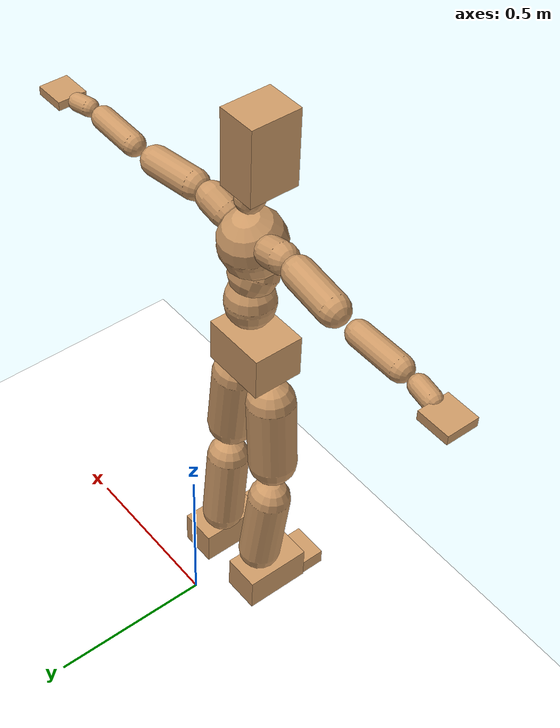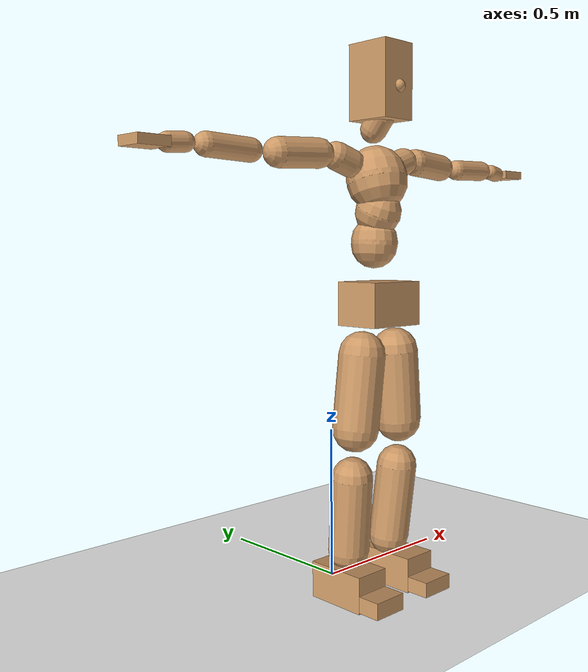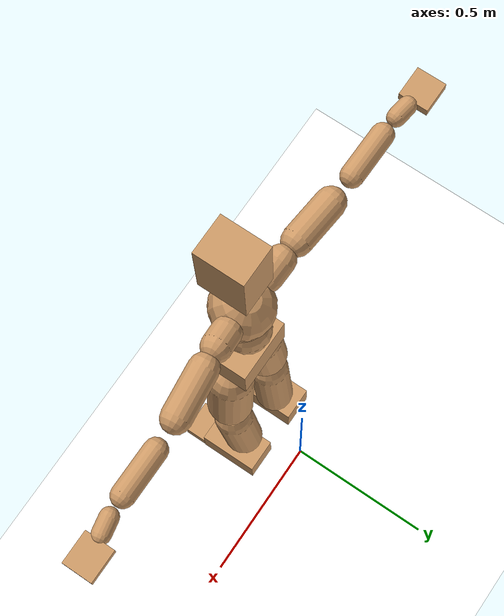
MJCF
<mujoco model="humanoid">
  <option integrator="implicitfast" />

  <visual>
    <global offwidth="1280" offheight="960" />
    <headlight active="1" ambient="0.34 0.34 0.34" diffuse="0.5 0.5 0.5" />
  </visual>

  <default>
    <joint damping="2" stiffness="2" armature="0.01" limited="true" solimplimit="0 .99 .01" />
    <geom condim="1" friction="0.7 0.005 0.0001" solimp=".99 .99 .003" solref="0.015 1" margin="0.001" rgba="0.8 0.6 .4 1" />
    <default class="smplcontact">
      <geom condim="3" friction="1. 0.005 0.0001" solref="0.015 1" solimp="0.98 0.98 0.001" priority="1" />
    </default>
    <default class="stiff_medium">
      <joint stiffness="10" />
    </default>
    <default class="stiff_medium_higher">
      <joint stiffness="50" />
    </default>
    <default class="stiff_high">
      <joint stiffness="100" />
    </default>
  </default>

  <asset>
    <texture type="skybox" builtin="gradient" rgb1="0.99 0.99 0.99" rgb2="0.608 0.828 0.892" width="100" />
    <texture builtin="flat" height="1278" mark="cross" markrgb="1 1 1" name="texgeom" random="0.01" rgb1="0.8 0.6 0.4" rgb2="0.8 0.6 0.4" type="cube" width="127" />
    <texture name="texplane" type="2d" builtin="checker" markrgb="1 1 1" rgb1="0.756 0.772 0.76" rgb2="0.6 0.6 0.6" width="100" height="100" />
    <material name="MatPlane" reflectance="0.5" texture="texplane" texrepeat="1 1" texuniform="true" />
    <material name="geom" texture="texgeom" texuniform="true" />
  </asset>

  <worldbody>
    <light name="tracking_light" pos="0 0 7" dir="0 0 -1" directional="true" cutoff="100" exponent="1" diffuse="1 1 1" specular="0.1 0.1 0.1" mode="trackcom" />
    <camera name="back" pos="0 3 2.4" xyaxes="-1 0 0 0 -1 2" mode="trackcom" />
    <camera name="side" pos="-3 0 2.4" xyaxes="0 -1 0 1 0 2" mode="trackcom" />
    <camera name="front_side" pos="-2.8 -2.8 0.8" xyaxes="0.5 -0.5 0 0.1 0.1 1" mode="trackcom" />
    <geom condim="3" name="floor" pos="0 0 0" rgba="1 1 1 1" size="100 100 .2" type="plane" material="MatPlane" />
    <body name="Pelvis" pos="-0.0018 -0.2233 0.94626" euler="90 0 0">
      <site name="Pelvis" size="0.01" />
      <freejoint name="Pelvis" />
      <geom type="box" pos="-0.0000 -0.0121 -0.0055" size="0.101555 0.06859 0.07885" quat="1.0000 0.0000 0.0000 0.0000" density="3165.830099" name="Pelvis" />
      <body name="L_Hip" pos="0.0695 -0.0914 -0.0068">
        <joint name="L_Hip_x" type="hinge" pos="0 0 0" axis="1 0 0" stiffness="15.348969899999998" range="-160.0 22.92" class="stiff_medium" damping="23.33683744368365" armature="0.01576965708581642"/>
        <joint name="L_Hip_y" type="hinge" pos="0 0 0" axis="0 1 0" stiffness="15.4205663" range="-70.0 70.0" class="stiff_medium" damping="17.398449188544404" armature="0.019630020602185116"/>
        <joint name="L_Hip_z" type="hinge" pos="0 0 0" axis="0 0 1" stiffness="15.407945599999998" range="-28.65 90.0" class="stiff_medium" damping="15.584850619811796" armature="0.015763786759595527"/>
        <geom type="capsule" density="2040.816327" fromto="0.0069 -0.075 -0.0009 0.0274 -0.3002 -0.0036" size="0.0738" name="L_Hip" />
        <body name="L_Knee" pos="0.0343 -0.3752 -0.0045">
          <joint name="L_Knee_x" type="hinge" pos="0 0 0" axis="1 0 0" range="-5.16 171.89" damping="12.800913507492277" armature="0.016354240077878446" stiffness="3.1311334599999996"/>
          <joint name="L_Knee_y" type="hinge" pos="0 0 0" axis="0 1 0" range="-4.58 6.88" damping="14.192153092969681" armature="0.020342005397322144" stiffness="3.0942317000000004"/>
          <joint name="L_Knee_z" type="hinge" pos="0 0 0" axis="0 0 1" range="-6.88 4.58" damping="12.838286463865066" armature="0.016324501605249363" stiffness="3.1551805400000004"/>
          <geom type="capsule" density="1234.567901" fromto="-0.0027 -0.0796 -0.0087 -0.0109 -0.3184 -0.035" size="0.06492" name="L_Knee" />
          <body name="L_Ankle" pos="-0.0136 -0.398 -0.0437">
            <joint name="L_Ankle_x" type="hinge" pos="0 0 0" axis="1 0 0" range="-45.84 45.84" class="stiff_medium" damping="11.121338151279762" armature="0.019882356332804583" stiffness="17.279999999999998"/>
            <joint name="L_Ankle_y" type="hinge" pos="0 0 0" axis="0 1 0" range="-74.48 22.92" class="stiff_medium" damping="5.5866245359367595" armature="0.02006839873040806" stiffness="17.279999999999998"/>
            <joint name="L_Ankle_z" type="hinge" pos="0 0 0" axis="0 0 1" range="-4.58 4.58" class="stiff_medium" damping="11.50730559456523" armature="0.021286342921603696" stiffness="17.279999999999998"/>
            <geom type="box" pos="0.0233 -0.0239 0.0242" size="0.05796 0.05568 0.102" quat="1.0000 0.0000 0.0000 0.0000" density="449.071558" name="L_Ankle" class="smplcontact" />
            <body name="L_Toe" pos="0.0264 -0.0558 0.1193">
              <joint name="L_Toe_x" type="hinge" pos="0 0 0" axis="1 0 0" range="-91.67 22.92" armature="0.021992555271829924" damping="3.8988785828605694" stiffness="3.4559999999999995"/>
              <joint name="L_Toe_y" type="hinge" pos="0 0 0" axis="0 1 0" range="-4.58 4.58" armature="0.02284650742559928" damping="3.9738527819452774" stiffness="3.4559999999999995"/>
              <joint name="L_Toe_z" type="hinge" pos="0 0 0" axis="0 0 1" range="-4.58 4.58" armature="0.024573152716749612" damping="4.12128173725327" stiffness="3.4559999999999995"/>
              <geom type="box" pos="-0.003 0.0055 0.0248" size="0.05736 0.024 0.05952" quat="1.0000 0.0000 0.0000 0.0000" density="423.206892" name="L_Toe" class="smplcontact" />
            </body>
          </body>
        </body>
      </body>
      <body name="R_Hip" pos="-0.0677 -0.0905 -0.0043">
        <joint name="R_Hip_x" type="hinge" pos="0 0 0" axis="1 0 0" stiffness="15.348969899999998" range="-160.0 22.92" class="stiff_medium" damping="23.33683744368365" armature="0.01576965708581642"/>
        <joint name="R_Hip_y" type="hinge" pos="0 0 0" axis="0 1 0" stiffness="15.4205663" range="-70.0 70.0" class="stiff_medium" damping="17.398449188544404" armature="0.019630020602185116"/>
        <joint name="R_Hip_z" type="hinge" pos="0 0 0" axis="0 0 1" stiffness="15.407945599999998" range="-90.0 28.65" class="stiff_medium" damping="15.584850619811796" armature="0.015763786759595527"/>
        <geom type="capsule" density="2040.816327" fromto="-0.0077 -0.0765 -0.0018 -0.0306 -0.3061 -0.0071" size="0.07272" name="R_Hip" />
        <body name="R_Knee" pos="-0.0383 -0.3826 -0.0089">
          <joint name="R_Knee_x" type="hinge" pos="0 0 0" axis="1 0 0" range="-5.16 171.89" damping="12.800913507492277" armature="0.016354240077878446" stiffness="3.1311334599999996"/>
          <joint name="R_Knee_y" type="hinge" pos="0 0 0" axis="0 1 0" range="-6.88 4.58" damping="14.192153092969681" armature="0.020342005397322144" stiffness="3.0942317000000004"/>
          <joint name="R_Knee_z" type="hinge" pos="0 0 0" axis="0 0 1" range="-4.58 6.88" damping="12.838286463865066" armature="0.016324501605249363" stiffness="3.1551805400000004"/>
          <geom type="capsule" density="1234.567901" fromto="0.0032 -0.0797 -0.0085 0.0126 -0.3187 -0.0338" size="0.06492" name="R_Knee" />
          <body name="R_Ankle" pos="0.0158 -0.3984 -0.0423">
            <joint name="R_Ankle_x" type="hinge" pos="0 0 0" axis="1 0 0" range="-45.84 45.84" class="stiff_medium" damping="11.121338151279762" armature="0.019882356332804583" stiffness="17.279999999999998"/>
            <joint name="R_Ankle_y" type="hinge" pos="0 0 0" axis="0 1 0" range="-22.92 74.48" class="stiff_medium" damping="5.5866245359367595" armature="0.02006839873040806" stiffness="17.279999999999998"/>
            <joint name="R_Ankle_z" type="hinge" pos="0 0 0" axis="0 0 1" range="-4.58 4.58" class="stiff_medium" damping="11.50730559456523" armature="0.021286342921603696" stiffness="17.279999999999998"/>
            <geom type="box" pos="-0.0212 -0.0174 0.0256" size="0.05796 0.05736 0.1038" quat="1.0000 0.0000 0.0000 0.0000" density="434.700981" name="R_Ankle" class="smplcontact" />
            <body name="R_Toe" pos="-0.0254 -0.0481 0.1233">
              <joint name="R_Toe_x" type="hinge" pos="0 0 0" axis="1 0 0" range="-91.67 22.92" armature="0.021992555271829924" damping="3.8988785828605694" stiffness="3.4559999999999995"/>
              <joint name="R_Toe_y" type="hinge" pos="0 0 0" axis="0 1 0" range="-4.58 4.58" armature="0.02284650742559928" damping="3.9738527819452774" stiffness="3.4559999999999995"/>
              <joint name="R_Toe_z" type="hinge" pos="0 0 0" axis="0 0 1" range="-4.58 4.58" armature="0.024573152716749612" damping="4.12128173725327" stiffness="3.4559999999999995"/>
              <geom type="box" pos="0.0042 0.0045 0.0227" size="0.05748 0.02592 0.05916" quat="1.0000 0.0000 0.0000 0.0000" density="407.384095" name="R_Toe" class="smplcontact" />
            </body>
          </body>
        </body>
      </body>
      <body name="Torso" pos="-0.0025 0.109 -0.0267">
        <joint name="Torso_x" type="hinge" pos="0 0 0" axis="1 0 0" range="-25.78 57.3" class="stiff_medium" damping="12.56716355671844" armature="0.008462456181984178" stiffness="8.294602599999997"/>
        <joint name="Torso_y" type="hinge" pos="0 0 0" axis="0 1 0" range="-57.3 57.3" class="stiff_high" damping="14.173435827243509" armature="0.006016006099101134" stiffness="83.47991999999999"/>
        <joint name="Torso_z" type="hinge" pos="0 0 0" axis="0 0 1" range="-34.38 34.38" class="stiff_high" damping="16.030768779936075" armature="0.007639328943283786" stiffness="84.09951632653062"/>
        <geom type="capsule" density="2040.816327" fromto="0.0025 0.0608 0.0005 0.003 0.0743 0.0006" size="0.073055" name="Torso" />
        <body name="Spine" pos="0.0055 0.1352 0.0011">
          <joint name="Spine_x" type="hinge" pos="0 0 0" axis="1 0 0" stiffness="8.334915200000001" range="-25.78 57.3" class="stiff_medium" damping="12.772765628249212" armature="0.008699337552638247"/>
          <joint name="Spine_y" type="hinge" pos="0 0 0" axis="0 1 0" stiffness="8.389115918367345" range="-57.3 57.3" class="stiff_high" damping="5.6770423669145265" armature="0.006002720211624874"/>
          <joint name="Spine_z" type="hinge" pos="0 0 0" axis="0 0 1" stiffness="16.679288333333336" range="-34.38 34.38" class="stiff_high" damping="9.31751280660292" armature="0.007229195738501351"/>
          <geom type="capsule" density="2040.816327" fromto="0.0007 0.0238 0.0114 0.0008 0.0291 0.014" size="0.071725" name="Spine" />
          <body name="Chest" pos="0.0015 0.0529 0.0254">
            <joint name="Chest_x" type="hinge" pos="0 0 0" axis="1 0 0" stiffness="8.363108541666668" range="-25.78 57.3" class="stiff_medium" damping="12.878095159374606" armature="0.008813593340463098"/>
            <joint name="Chest_y" type="hinge" pos="0 0 0" axis="0 1 0" stiffness="7.612712954545454" range="-57.3 57.3" class="stiff_high" damping="5.40440439857855" armature="0.005994821400598657"/>
            <joint name="Chest_z" type="hinge" pos="0 0 0" axis="0 0 1" stiffness="17.073315652173914" range="-34.38 34.38" class="stiff_high" damping="9.290007962130762" armature="0.007020722480907736"/>
            <geom type="capsule" density="2040.816327" fromto="-0.0009 0.0682 -0.0173 -0.001 0.0833 -0.0212" size="0.09519" name="Chest" />
            <body name="Neck" pos="-0.0028 0.2139 -0.0429">
              <joint name="Neck_x" type="hinge" pos="0 0 0" axis="1 0 0" range="-28.65 57.3" class="stiff_medium_higher" damping="9.943841819958486" armature="0.00997744340180193" stiffness="49.551767"/>
              <joint name="Neck_y" type="hinge" pos="0 0 0" axis="0 1 0" range="-40.11 40.11" class="stiff_medium_higher" damping="9.919222443047492" armature="0.009912575343456608" stiffness="49.62937"/>
              <joint name="Neck_z" type="hinge" pos="0 0 0" axis="0 0 1" range="-40.11 40.11" class="stiff_medium_higher" damping="9.971103632157991" armature="0.00998151492388954" stiffness="49.803515999999995"/>
              <geom type="capsule" density="1000" fromto="0.001 0.013 0.0103 0.0041 0.052 0.0411" size="0.04142" name="Neck" />
              <body name="Head" pos="0.0052 0.065 0.0513">
                <joint name="Head_x" type="hinge" pos="0 0 0" axis="1 0 0" range="-28.65 57.3" class="stiff_medium_higher" damping="2.0000000000000036" armature="0.010000000000000035" stiffness="50.0"/>
                <joint name="Head_y" type="hinge" pos="0 0 0" axis="0 1 0" range="-40.11 40.11" class="stiff_medium_higher" damping="2.0" armature="0.01" stiffness="50.0"/>
                <joint name="Head_z" type="hinge" pos="0 0 0" axis="0 0 1" range="-40.11 40.11" class="stiff_medium_higher" damping="2.0000000000000004" armature="0.010000000000000005" stiffness="50.0"/>
                <geom type="box" pos="-0.0042 0.0876 -0.0116" size="0.0606 0.1154 0.076" quat="1.0000 0.0000 0.0000 0.0000" density="1018.069894" name="Head" />
                <geom type="capsule" name="nose" size="0.02 0.01" pos="0 0.07 0.05" quat="1 0 0 0" mass="0" contype="0" conaffinity="0" />
              </body>
            </body>
            <body name="L_Thorax" pos="0.07486 0.115615 -0.032395">
              <joint name="L_Thorax_x" type="hinge" pos="0 0 0" axis="1 0 0" range="-10.89 4.58" class="stiff_medium_higher" damping="11.617629572461896" armature="0.005395871854608611" stiffness="31.266799999999996"/>
              <joint name="L_Thorax_y" type="hinge" pos="0 0 0" axis="0 1 0" range="-28.65 17.19" class="stiff_medium_higher" damping="12.162455089070438" armature="0.005897978124903279" stiffness="31.350852500000002"/>
              <joint name="L_Thorax_z" type="hinge" pos="0 0 0" axis="0 0 1" range="-31.51 40.11" class="stiff_medium_higher" damping="12.162702657898087" armature="0.005898433565331822" stiffness="31.349708"/>
              <geom type="capsule" density="1000" fromto="0.01729 0.005795 -0.00171 0.06916 0.02318 -0.006745" size="0.044285" name="L_Thorax" />
              <body name="L_Shoulder" pos="0.08645 0.028975 -0.008455">
                <joint name="L_Shoulder_x" type="hinge" pos="0 0 0" axis="1 0 0" range="-97.4 97.4" class="stiff_medium" damping="3.4159800486595655" armature="0.005193952195060316" stiffness="6.240655400000001"/>
                <joint name="L_Shoulder_y" type="hinge" pos="0 0 0" axis="0 1 0" range="-108.86 80.21" class="stiff_medium" damping="3.6408546116622937" armature="0.005878049796808753" stiffness="6.2642764"/>
                <joint name="L_Shoulder_z" type="hinge" pos="0 0 0" axis="0 0 1" range="-97.4 85.94" class="stiff_medium" damping="3.64042875753194" armature="0.005878619915411259" stiffness="6.2622037"/>
                <geom type="capsule" density="1000" fromto="0.049305 -0.00247 -0.005225 0.197315 -0.00969 -0.0209" size="0.043945" name="L_Shoulder" />
                <body name="L_Elbow" pos="0.24662 -0.01216 -0.026125">
                  <joint name="L_Elbow_x" type="hinge" pos="0 0 0" axis="1 0 0" range="-17.19 4.58" damping="2.748710011517864" armature="0.004880906543516301" stiffness="1.2383612199999998"/>
                  <joint name="L_Elbow_y" type="hinge" pos="0 0 0" axis="0 1 0" range="-180.0 17.19" damping="2.9914813165666883" armature="0.005781387153921015" stiffness="1.23831326"/>
                  <joint name="L_Elbow_z" type="hinge" pos="0 0 0" axis="0 0 1" range="-100.84 4.58" damping="2.9916788388722066" armature="0.0057843756221757315" stiffness="1.23783694"/>
                  <geom type="capsule" density="1000" fromto="0.04731 0.00171 -0.00019 0.18943 0.00684 -0.000855" size="0.034425" name="L_Elbow" />
                  <body name="L_Wrist" pos="0.23674 0.00855 -0.00114">
                    <joint name="L_Wrist_x" type="hinge" pos="0 0 0" axis="1 0 0" range="-180.0 22.92" armature="0.00480892684716389" damping="1.0706255140252015" stiffness="1.1917825199999998"/>
                    <joint name="L_Wrist_y" type="hinge" pos="0 0 0" axis="0 1 0" range="-17.19 17.19" armature="0.005471288655337141" damping="1.1435778531741585" stiffness="1.19512092"/>
                    <joint name="L_Wrist_z" type="hinge" pos="0 0 0" axis="0 0 1" range="-22.92 22.92" armature="0.005507766629598894" damping="1.1469382926682021" stiffness="1.1941931599999998"/>
                    <geom type="capsule" density="1000" fromto="0.01596 -0.00152 -0.00285 0.06384 -0.006175 -0.0114" size="0.02703" name="L_Wrist" class="smplcontact" />
                    <body name="L_Hand" pos="0.0798 -0.00779 -0.014155">
                      <joint name="L_Hand_x" type="hinge" pos="0 0 0" axis="1 0 0" range="-17.19 17.19" armature="0.004485212247993442" damping="1.0230851468987487" stiffness="1.166838"/>
                      <joint name="L_Hand_y" type="hinge" pos="0 0 0" axis="0 1 0" range="-51.57 51.57" armature="0.005019471274957139" damping="1.0823040075254677" stiffness="1.166838"/>
                      <joint name="L_Hand_z" type="hinge" pos="0 0 0" axis="0 0 1" range="-91.67 91.67" armature="0.0051618853182187575" damping="1.0975503579280304" stiffness="1.166838"/>
                      <geom type="box" pos="0.046835 0.00095 -0.00551" size="0.049725 0.01343 0.04573" quat="1.0000 0.0000 0.0000 0.0000" density="400.552564" name="L_Hand" class="smplcontact" />
                    </body>
                  </body>
                </body>
              </body>
            </body>
            <body name="R_Thorax" pos="-0.07771 0.11286 -0.03667">
              <joint name="R_Thorax_x" type="hinge" pos="0 0 0" axis="1 0 0" range="-10.89 4.58" class="stiff_medium_higher" damping="11.617629572461896" armature="0.005395871854608611" stiffness="31.266799999999996"/>
              <joint name="R_Thorax_y" type="hinge" pos="0 0 0" axis="0 1 0" range="-17.19 28.65" class="stiff_medium_higher" damping="12.162455089070438" armature="0.005897978124903279" stiffness="31.350852500000002"/>
              <joint name="R_Thorax_z" type="hinge" pos="0 0 0" axis="0 0 1" range="-40.11 31.51" class="stiff_medium_higher" damping="12.162702657898087" armature="0.005898433565331822" stiffness="31.349708"/>
              <geom type="capsule" density="1000" fromto="-0.01824 0.006175 -0.00171 -0.07296 0.0247 -0.006935" size="0.043435" name="R_Thorax" />
              <body name="R_Shoulder" pos="-0.0912 0.03097 -0.008645">
                <joint name="R_Shoulder_x" type="hinge" pos="0 0 0" axis="1 0 0" range="-97.4 97.4" class="stiff_medium" damping="3.4159800486595655" armature="0.005193952195060316" stiffness="6.240655400000001"/>
                <joint name="R_Shoulder_y" type="hinge" pos="0 0 0" axis="0 1 0" range="-80.21 108.86" class="stiff_medium" damping="3.6408546116622937" armature="0.005878049796808753" stiffness="6.2642764"/>
                <joint name="R_Shoulder_z" type="hinge" pos="0 0 0" axis="0 0 1" range="-85.94 97.4" class="stiff_medium" damping="3.64042875753194" armature="0.005878619915411259" stiffness="6.2622037"/>
                <geom type="capsule" density="1000" fromto="-0.048165 -0.002565 -0.004085 -0.19285 -0.010165 -0.016245" size="0.045135" name="R_Shoulder" />
                <body name="R_Elbow" pos="-0.241015 -0.012635 -0.02033">
                  <joint name="R_Elbow_x" type="hinge" pos="0 0 0" axis="1 0 0" range="-17.19 4.58" damping="2.748710011517864" armature="0.004880906543516301" stiffness="1.2383612199999998"/>
                  <joint name="R_Elbow_y" type="hinge" pos="0 0 0" axis="0 1 0" range="-17.19 180.0" damping="2.9914813165666883" armature="0.005781387153921015" stiffness="1.23831326"/>
                  <joint name="R_Elbow_z" type="hinge" pos="0 0 0" axis="0 0 1" range="-4.58 100.84" damping="2.9916788388722066" armature="0.0057843756221757315" stiffness="1.23783694"/>
                  <geom type="capsule" density="1000" fromto="-0.048545 0.00152 -0.001045 -0.19399 0.00589 -0.00418" size="0.03468" name="R_Elbow" />
                  <body name="R_Wrist" pos="-0.242535 0.00741 -0.00532">
                    <joint name="R_Wrist_x" type="hinge" pos="0 0 0" axis="1 0 0" range="-180.0 22.92" armature="0.00480892684716389" damping="1.0706255140252015" stiffness="1.1917825199999998"/>
                    <joint name="R_Wrist_y" type="hinge" pos="0 0 0" axis="0 1 0" range="-17.19 17.19" armature="0.005471288655337141" damping="1.1435778531741585" stiffness="1.19512092"/>
                    <joint name="R_Wrist_z" type="hinge" pos="0 0 0" axis="0 0 1" range="-22.92 22.92" armature="0.005507766629598894" damping="1.1469382926682021" stiffness="1.1941931599999998"/>
                    <geom type="capsule" density="1000" fromto="-0.016055 -0.00114 -0.001995 -0.064315 -0.004655 -0.007885" size="0.02771" name="R_Wrist" class="smplcontact" />
                    <body name="R_Hand" pos="-0.08037 -0.005795 -0.009785">
                      <joint name="R_Hand_x" type="hinge" pos="0 0 0" axis="1 0 0" range="-17.19 17.19" armature="0.004485212247993442" damping="1.0230851468987487" stiffness="1.166838"/>
                      <joint name="R_Hand_y" type="hinge" pos="0 0 0" axis="0 1 0" range="-51.57 51.57" armature="0.005019471274957139" damping="1.0823040075254677" stiffness="1.166838"/>
                      <joint name="R_Hand_z" type="hinge" pos="0 0 0" axis="0 0 1" range="-91.67 91.67" armature="0.0051618853182187575" damping="1.0975503579280304" stiffness="1.166838"/>
                      <geom type="box" pos="-0.04389 -0.000855 -0.007505" size="0.048365 0.01394 0.04641" quat="1.0000 0.0000 0.0000 0.0000" density="403.679611" name="R_Hand" class="smplcontact" />
                    </body>
                  </body>
                </body>
              </body>
            </body>
          </body>
        </body>
      </body>
    </body>
  </worldbody>
  <actuator>
    <general name="L_Hip_x" joint="L_Hip_x" biastype="affine" gainprm="441.02205051948727" biasprm="-330.50132672868637 -276.2814582 -3.1115783258244867" ctrllimited="true" ctrlrange="-1 1" forcerange="-552.5629164 552.5629164" />
    <general name="L_Hip_y" joint="L_Hip_y" biastype="affine" gainprm="339.11596461592035" biasprm="0.0 -277.5701934 -3.479689837708881" ctrllimited="true" ctrlrange="-1 1" forcerange="-555.1403868 555.1403868" />
    <general name="L_Hip_z" joint="L_Hip_z" biastype="affine" gainprm="287.1655617357157" biasprm="148.4838365991248 -277.3430207999999 -3.1169701239623593" ctrllimited="true" ctrlrange="-1 1" forcerange="-554.6860415999998 554.6860415999998" />
    <general name="L_Knee_x" joint="L_Knee_x" biastype="affine" gainprm="435.3989643074665" biasprm="410.02015994907583 -281.80201139999997 -3.2002283768730693" ctrllimited="true" ctrlrange="-1 1" forcerange="-563.6040227999999 563.6040227999999" />
    <general name="L_Knee_y" joint="L_Knee_y" biastype="affine" gainprm="27.850136628748643" biasprm="5.589468956904178 -278.480853 -3.5480382732424203" ctrllimited="true" ctrlrange="-1 1" forcerange="-556.961706 556.961706" />
    <general name="L_Knee_z" joint="L_Knee_z" biastype="affine" gainprm="28.398716594936612" biasprm="-5.6995679029977495 -283.96624860000003 -3.2095716159662664" ctrllimited="true" ctrlrange="-1 1" forcerange="-567.9324972000001 567.9324972000001" />
    <general name="L_Ankle_x" joint="L_Ankle_x" biastype="affine" gainprm="124.42516465584049" biasprm="0.0 -155.51999999999998 -3.7071127170932536" ctrllimited="true" ctrlrange="-1 1" forcerange="-311.03999999999996 311.03999999999996" />
    <general name="L_Ankle_y" joint="L_Ankle_y" biastype="affine" gainprm="132.188165766567" biasprm="-69.97558343864677 -155.51999999999998 -3.724416357291173" ctrllimited="true" ctrlrange="-1 1" forcerange="-311.03999999999996 311.03999999999996" />
    <general name="L_Ankle_z" joint="L_Ankle_z" biastype="affine" gainprm="12.431659121373238" biasprm="0.0 -155.51999999999998 -3.8357685315217434" ctrllimited="true" ctrlrange="-1 1" forcerange="-311.03999999999996 311.03999999999996" />
    <general name="L_Toe_x" joint="L_Toe_x" biastype="affine" gainprm="124.41430731162966" biasprm="-74.64424144929346 -124.41599999999998 -1.559551433144228" ctrllimited="true" ctrlrange="-1 1" forcerange="-248.83199999999997 248.83199999999997" />
    <general name="L_Toe_y" joint="L_Toe_y" biastype="affine" gainprm="9.945327297098592" biasprm="0.0 -124.41599999999998 -1.589541112778111" ctrllimited="true" ctrlrange="-1 1" forcerange="-248.83199999999997 248.83199999999997" />
    <general name="L_Toe_z" joint="L_Toe_z" biastype="affine" gainprm="9.945327297098592" biasprm="0.0 -124.41599999999998 -1.648512694901308" ctrllimited="true" ctrlrange="-1 1" forcerange="-248.83199999999997 248.83199999999997" />
    <general name="R_Hip_x" joint="R_Hip_x" biastype="affine" gainprm="441.02205051948727" biasprm="-330.50132672868637 -276.2814582 -3.1115783258244867" ctrllimited="true" ctrlrange="-1 1" forcerange="-552.5629164 552.5629164" />
    <general name="R_Hip_y" joint="R_Hip_y" biastype="affine" gainprm="339.11596461592035" biasprm="0.0 -277.5701934 -3.479689837708881" ctrllimited="true" ctrlrange="-1 1" forcerange="-555.1403868 555.1403868" />
    <general name="R_Hip_z" joint="R_Hip_z" biastype="affine" gainprm="287.1655617357157" biasprm="-148.4838365991248 -277.3430207999999 -3.1169701239623593" ctrllimited="true" ctrlrange="-1 1" forcerange="-554.6860415999998 554.6860415999998" />
    <general name="R_Knee_x" joint="R_Knee_x" biastype="affine" gainprm="435.3989643074665" biasprm="410.02015994907583 -281.80201139999997 -3.2002283768730693" ctrllimited="true" ctrlrange="-1 1" forcerange="-563.6040227999999 563.6040227999999" />
    <general name="R_Knee_y" joint="R_Knee_y" biastype="affine" gainprm="27.850136628748643" biasprm="-5.589468956904178 -278.480853 -3.5480382732424203" ctrllimited="true" ctrlrange="-1 1" forcerange="-556.961706 556.961706" />
    <general name="R_Knee_z" joint="R_Knee_z" biastype="affine" gainprm="28.398716594936612" biasprm="5.6995679029977495 -283.96624860000003 -3.2095716159662664" ctrllimited="true" ctrlrange="-1 1" forcerange="-567.9324972000001 567.9324972000001" />
    <general name="R_Ankle_x" joint="R_Ankle_x" biastype="affine" gainprm="124.42516465584049" biasprm="0.0 -155.51999999999998 -3.7071127170932536" ctrllimited="true" ctrlrange="-1 1" forcerange="-311.03999999999996 311.03999999999996" />
    <general name="R_Ankle_y" joint="R_Ankle_y" biastype="affine" gainprm="132.188165766567" biasprm="69.97558343864677 -155.51999999999998 -3.724416357291173" ctrllimited="true" ctrlrange="-1 1" forcerange="-311.03999999999996 311.03999999999996" />
    <general name="R_Ankle_z" joint="R_Ankle_z" biastype="affine" gainprm="12.431659121373238" biasprm="0.0 -155.51999999999998 -3.8357685315217434" ctrllimited="true" ctrlrange="-1 1" forcerange="-311.03999999999996 311.03999999999996" />
    <general name="R_Toe_x" joint="R_Toe_x" biastype="affine" gainprm="124.41430731162966" biasprm="-74.64424144929346 -124.41599999999998 -1.559551433144228" ctrllimited="true" ctrlrange="-1 1" forcerange="-248.83199999999997 248.83199999999997" />
    <general name="R_Toe_y" joint="R_Toe_y" biastype="affine" gainprm="9.945327297098592" biasprm="0.0 -124.41599999999998 -1.589541112778111" ctrllimited="true" ctrlrange="-1 1" forcerange="-248.83199999999997 248.83199999999997" />
    <general name="R_Toe_z" joint="R_Toe_z" biastype="affine" gainprm="9.945327297098592" biasprm="0.0 -124.41599999999998 -1.648512694901308" ctrllimited="true" ctrlrange="-1 1" forcerange="-248.83199999999997 248.83199999999997" />
    <general name="Torso_x" joint="Torso_x" biastype="affine" gainprm="144.32803041291817" biasprm="54.75709579459773 -199.07046239999997 -3.351243615124917" ctrllimited="true" ctrlrange="-1 1" forcerange="-298.60569359999994 298.60569359999994" />
    <general name="Torso_y" joint="Torso_y" biastype="affine" gainprm="200.3665661932174" biasprm="0.0 -200.351808 -2.8346871654487016" ctrllimited="true" ctrlrange="-1 1" forcerange="-300.527712 300.527712" />
    <general name="Torso_z" joint="Torso_z" biastype="affine" gainprm="121.1122241482074" biasprm="0.0 -201.83883918367349 -3.2061537559872146" ctrllimited="true" ctrlrange="-1 1" forcerange="-302.7582587755102 302.7582587755102" />
    <general name="Spine_x" joint="Spine_x" biastype="affine" gainprm="145.02947910665355" biasprm="55.02322076843668 -200.03796480000003 -3.40607083419979" ctrllimited="true" ctrlrange="-1 1" forcerange="-300.0569472000001 300.0569472000001" />
    <general name="Spine_y" joint="Spine_y" biastype="affine" gainprm="201.35361293591617" biasprm="0.0 -201.3387820408163 -2.8385211834572632" ctrllimited="true" ctrlrange="-1 1" forcerange="-302.00817306122445 302.00817306122445" />
    <general name="Spine_z" joint="Spine_z" biastype="affine" gainprm="120.09972206118286" biasprm="0.0 -200.15146000000001 -3.1058376022009733" ctrllimited="true" ctrlrange="-1 1" forcerange="-300.22719 300.22719" />
    <general name="Chest_x" joint="Chest_x" biastype="affine" gainprm="145.52004986329334" biasprm="55.20934005405639 -200.714605 -3.4341587091665615" ctrllimited="true" ctrlrange="-1 1" forcerange="-301.0719075 301.0719075" />
    <general name="Chest_y" joint="Chest_y" biastype="affine" gainprm="182.71856922202315" biasprm="0.0 -182.7051109090909 -2.702202199289275" ctrllimited="true" ctrlrange="-1 1" forcerange="-274.0576663636364 274.0576663636364" />
    <general name="Chest_z" joint="Chest_z" biastype="affine" gainprm="122.93692773396286" biasprm="0.0 -204.87978782608698 -3.096669320710254" ctrllimited="true" ctrlrange="-1 1" forcerange="-307.3196817391305 307.3196817391305" />
    <general name="Neck_x" joint="Neck_x" biastype="affine" gainprm="26.75992520817206" biasprm="8.919975069390686 -35.67727224 -0.795507345596679" ctrllimited="true" ctrlrange="-1 1" forcerange="-71.35454448 71.35454448" />
    <general name="Neck_y" joint="Neck_y" biastype="affine" gainprm="25.015044987331834" biasprm="0.0 -35.7331464 -0.7935377954437993" ctrllimited="true" ctrlrange="-1 1" forcerange="-71.4662928 71.4662928" />
    <general name="Neck_z" joint="Neck_z" biastype="affine" gainprm="25.10282103656163" biasprm="0.0 -35.85853151999999 -0.7976882905726393" ctrllimited="true" ctrlrange="-1 1" forcerange="-71.71706303999999 71.71706303999999" />
    <general name="Head_x" joint="Head_x" biastype="affine" gainprm="18.001325905069514" biasprm="6.000441968356505 -24.0 -0.8000000000000015" ctrllimited="true" ctrlrange="-1 1" forcerange="-48.0 48.0" />
    <general name="Head_y" joint="Head_y" biastype="affine" gainprm="16.801237511398213" biasprm="0.0 -24.0 -0.8" ctrllimited="true" ctrlrange="-1 1" forcerange="-48.0 48.0" />
    <general name="Head_z" joint="Head_z" biastype="affine" gainprm="16.801237511398213" biasprm="0.0 -24.0 -0.8000000000000003" ctrllimited="true" ctrlrange="-1 1" forcerange="-48.0 48.0" />
    <general name="L_Thorax_x" joint="L_Thorax_x" biastype="affine" gainprm="10.130534572227416" biasprm="-4.132105568891728 -75.04031999999998 -0.9294103657969517" ctrllimited="true" ctrlrange="-1 1" forcerange="-150.08063999999996 150.08063999999996" />
    <general name="L_Thorax_y" joint="L_Thorax_y" biastype="affine" gainprm="30.099035373560714" biasprm="-7.524758843390178 -75.24204600000002 -0.9729964071256352" ctrllimited="true" ctrlrange="-1 1" forcerange="-150.48409200000003 150.48409200000003" />
    <general name="L_Thorax_z" joint="L_Thorax_z" biastype="affine" gainprm="47.024742960985584" biasprm="5.646646041112482 -75.23929919999999 -0.9730162126318471" ctrllimited="true" ctrlrange="-1 1" forcerange="-150.47859839999998 150.47859839999998" />
    <general name="L_Shoulder_x" joint="L_Shoulder_x" biastype="affine" gainprm="50.92227101896431" biasprm="0.0 -29.955145920000007 -0.9109280129758842" ctrllimited="true" ctrlrange="-1 1" forcerange="-59.91029184000001 59.91029184000001" />
    <general name="L_Shoulder_y" joint="L_Shoulder_y" biastype="affine" gainprm="49.61147570784278" biasprm="-7.51768540238904 -30.068526719999998 -0.970894563109945" ctrllimited="true" ctrlrange="-1 1" forcerange="-60.137053439999995 60.137053439999995" />
    <general name="L_Shoulder_z" joint="L_Shoulder_z" biastype="affine" gainprm="48.09202085521927" biasprm="-3.0060791916701977 -30.05857776 -0.9707810020085174" ctrllimited="true" ctrlrange="-1 1" forcerange="-60.11715552 60.11715552" />
    <general name="L_Elbow_x" joint="L_Elbow_x" biastype="affine" gainprm="8.469458514974907" biasprm="-4.9058278306767855 -44.58100391999999 -0.4397936018428583" ctrllimited="true" ctrlrange="-1 1" forcerange="-89.16200783999999 89.16200783999999" />
    <general name="L_Elbow_y" joint="L_Elbow_y" biastype="affine" gainprm="76.71234929800761" biasprm="-63.33758095851017 -44.57927736 -0.4786370106506701" ctrllimited="true" ctrlrange="-1 1" forcerange="-89.15855472 89.15855472" />
    <general name="L_Elbow_z" joint="L_Elbow_z" biastype="affine" gainprm="40.99551282533966" biasprm="-37.43339086100547 -44.56212984 -0.4786686142195531" ctrllimited="true" ctrlrange="-1 1" forcerange="-89.12425968 89.12425968" />
    <general name="L_Wrist_x" joint="L_Wrist_x" biastype="affine" gainprm="12.662529998558526" biasprm="-9.802041258493857 -7.150695119999999 -0.4282502056100806" ctrllimited="true" ctrlrange="-1 1" forcerange="-14.301390239999998 14.301390239999998" />
    <general name="L_Wrist_y" joint="L_Wrist_y" biastype="affine" gainprm="2.1513761176886512" biasprm="0.0 -7.1707255199999995 -0.45743114126966344" ctrllimited="true" ctrlrange="-1 1" forcerange="-14.341451039999999 14.341451039999999" />
    <general name="L_Wrist_z" joint="L_Wrist_z" biastype="affine" gainprm="2.8662747022353097" biasprm="0.0 -7.1651589599999985 -0.45877531706728086" ctrllimited="true" ctrlrange="-1 1" forcerange="-14.330317919999997 14.330317919999997" />
    <general name="L_Hand_x" joint="L_Hand_x" biastype="affine" gainprm="2.1004631116419508" biasprm="0.0 -7.001028 -0.40923405875949953" ctrllimited="true" ctrlrange="-1 1" forcerange="-14.002056 14.002056" />
    <general name="L_Hand_y" joint="L_Hand_y" biastype="affine" gainprm="6.301389334925851" biasprm="0.0 -7.001028 -0.4329216030101871" ctrllimited="true" ctrlrange="-1 1" forcerange="-14.002056 14.002056" />
    <general name="L_Hand_z" joint="L_Hand_z" biastype="affine" gainprm="11.201248018860825" biasprm="0.0 -7.001028 -0.4390201431712122" ctrllimited="true" ctrlrange="-1 1" forcerange="-14.002056 14.002056" />
    <general name="R_Thorax_x" joint="R_Thorax_x" biastype="affine" gainprm="10.130534572227416" biasprm="-4.132105568891728 -75.04031999999998 -0.9294103657969517" ctrllimited="true" ctrlrange="-1 1" forcerange="-150.08063999999996 150.08063999999996" />
    <general name="R_Thorax_y" joint="R_Thorax_y" biastype="affine" gainprm="30.099035373560714" biasprm="7.524758843390174 -75.24204600000002 -0.9729964071256352" ctrllimited="true" ctrlrange="-1 1" forcerange="-150.48409200000003 150.48409200000003" />
    <general name="R_Thorax_z" joint="R_Thorax_z" biastype="affine" gainprm="47.024742960985584" biasprm="-5.646646041112482 -75.23929919999999 -0.9730162126318471" ctrllimited="true" ctrlrange="-1 1" forcerange="-150.47859839999998 150.47859839999998" />
    <general name="R_Shoulder_x" joint="R_Shoulder_x" biastype="affine" gainprm="50.92227101896431" biasprm="0.0 -29.955145920000007 -0.9109280129758842" ctrllimited="true" ctrlrange="-1 1" forcerange="-59.91029184000001 59.91029184000001" />
    <general name="R_Shoulder_y" joint="R_Shoulder_y" biastype="affine" gainprm="49.61147570784278" biasprm="7.51768540238904 -30.068526719999998 -0.970894563109945" ctrllimited="true" ctrlrange="-1 1" forcerange="-60.137053439999995 60.137053439999995" />
    <general name="R_Shoulder_z" joint="R_Shoulder_z" biastype="affine" gainprm="48.09202085521927" biasprm="3.006079191670191 -30.05857776 -0.9707810020085174" ctrllimited="true" ctrlrange="-1 1" forcerange="-60.11715552 60.11715552" />
    <general name="R_Elbow_x" joint="R_Elbow_x" biastype="affine" gainprm="8.469458514974907" biasprm="-4.9058278306767855 -44.58100391999999 -0.4397936018428583" ctrllimited="true" ctrlrange="-1 1" forcerange="-89.16200783999999 89.16200783999999" />
    <general name="R_Elbow_y" joint="R_Elbow_y" biastype="affine" gainprm="76.71234929800761" biasprm="63.33758095851017 -44.57927736 -0.4786370106506701" ctrllimited="true" ctrlrange="-1 1" forcerange="-89.15855472 89.15855472" />
    <general name="R_Elbow_z" joint="R_Elbow_z" biastype="affine" gainprm="40.99551282533966" biasprm="37.43339086100546 -44.56212984 -0.4786686142195531" ctrllimited="true" ctrlrange="-1 1" forcerange="-89.12425968 89.12425968" />
    <general name="R_Wrist_x" joint="R_Wrist_x" biastype="affine" gainprm="12.662529998558526" biasprm="-9.802041258493857 -7.150695119999999 -0.4282502056100806" ctrllimited="true" ctrlrange="-1 1" forcerange="-14.301390239999998 14.301390239999998" />
    <general name="R_Wrist_y" joint="R_Wrist_y" biastype="affine" gainprm="2.1513761176886512" biasprm="0.0 -7.1707255199999995 -0.45743114126966344" ctrllimited="true" ctrlrange="-1 1" forcerange="-14.341451039999999 14.341451039999999" />
    <general name="R_Wrist_z" joint="R_Wrist_z" biastype="affine" gainprm="2.8662747022353097" biasprm="0.0 -7.1651589599999985 -0.45877531706728086" ctrllimited="true" ctrlrange="-1 1" forcerange="-14.330317919999997 14.330317919999997" />
    <general name="R_Hand_x" joint="R_Hand_x" biastype="affine" gainprm="2.1004631116419508" biasprm="0.0 -7.001028 -0.40923405875949953" ctrllimited="true" ctrlrange="-1 1" forcerange="-14.002056 14.002056" />
    <general name="R_Hand_y" joint="R_Hand_y" biastype="affine" gainprm="6.301389334925851" biasprm="0.0 -7.001028 -0.4329216030101871" ctrllimited="true" ctrlrange="-1 1" forcerange="-14.002056 14.002056" />
    <general name="R_Hand_z" joint="R_Hand_z" biastype="affine" gainprm="11.201248018860825" biasprm="0.0 -7.001028 -0.4390201431712122" ctrllimited="true" ctrlrange="-1 1" forcerange="-14.002056 14.002056" />
  </actuator>
  <contact>
    <exclude body1="Torso" body2="Chest" />
    <exclude body1="Head" body2="Chest" />
    <exclude body1="R_Knee" body2="R_Toe" />
    <exclude body1="R_Knee" body2="L_Ankle" />
    <exclude body1="R_Knee" body2="L_Toe" />
    <exclude body1="L_Knee" body2="L_Toe" />
    <exclude body1="L_Knee" body2="R_Ankle" />
    <exclude body1="L_Knee" body2="R_Toe" />
    <exclude body1="L_Shoulder" body2="Chest" />
    <exclude body1="R_Shoulder" body2="Chest" />
  </contact>
  <sensor>
    <framelinvel name="sensor_Pelvis_framelinvel" objtype="xbody" objname="Pelvis" />
    <framelinvel name="sensor_L_Hip_framelinvel" objtype="xbody" objname="L_Hip" />
    <framelinvel name="sensor_L_Knee_framelinvel" objtype="xbody" objname="L_Knee" />
    <framelinvel name="sensor_L_Ankle_framelinvel" objtype="xbody" objname="L_Ankle" />
    <framelinvel name="sensor_L_Toe_framelinvel" objtype="xbody" objname="L_Toe" />
    <framelinvel name="sensor_R_Hip_framelinvel" objtype="xbody" objname="R_Hip" />
    <framelinvel name="sensor_R_Knee_framelinvel" objtype="xbody" objname="R_Knee" />
    <framelinvel name="sensor_R_Ankle_framelinvel" objtype="xbody" objname="R_Ankle" />
    <framelinvel name="sensor_R_Toe_framelinvel" objtype="xbody" objname="R_Toe" />
    <framelinvel name="sensor_Torso_framelinvel" objtype="xbody" objname="Torso" />
    <framelinvel name="sensor_Spine_framelinvel" objtype="xbody" objname="Spine" />
    <framelinvel name="sensor_Chest_framelinvel" objtype="xbody" objname="Chest" />
    <framelinvel name="sensor_Neck_framelinvel" objtype="xbody" objname="Neck" />
    <framelinvel name="sensor_Head_framelinvel" objtype="xbody" objname="Head" />
    <framelinvel name="sensor_L_Thorax_framelinvel" objtype="xbody" objname="L_Thorax" />
    <framelinvel name="sensor_L_Shoulder_framelinvel" objtype="xbody" objname="L_Shoulder" />
    <framelinvel name="sensor_L_Elbow_framelinvel" objtype="xbody" objname="L_Elbow" />
    <framelinvel name="sensor_L_Wrist_framelinvel" objtype="xbody" objname="L_Wrist" />
    <framelinvel name="sensor_L_Hand_framelinvel" objtype="xbody" objname="L_Hand" />
    <framelinvel name="sensor_R_Thorax_framelinvel" objtype="xbody" objname="R_Thorax" />
    <framelinvel name="sensor_R_Shoulder_framelinvel" objtype="xbody" objname="R_Shoulder" />
    <framelinvel name="sensor_R_Elbow_framelinvel" objtype="xbody" objname="R_Elbow" />
    <framelinvel name="sensor_R_Wrist_framelinvel" objtype="xbody" objname="R_Wrist" />
    <framelinvel name="sensor_R_Hand_framelinvel" objtype="xbody" objname="R_Hand" />
    <frameangvel name="sensor_Pelvis_frameangvel" objtype="xbody" objname="Pelvis" />
    <frameangvel name="sensor_L_Hip_frameangvel" objtype="xbody" objname="L_Hip" />
    <frameangvel name="sensor_L_Knee_frameangvel" objtype="xbody" objname="L_Knee" />
    <frameangvel name="sensor_L_Ankle_frameangvel" objtype="xbody" objname="L_Ankle" />
    <frameangvel name="sensor_L_Toe_frameangvel" objtype="xbody" objname="L_Toe" />
    <frameangvel name="sensor_R_Hip_frameangvel" objtype="xbody" objname="R_Hip" />
    <frameangvel name="sensor_R_Knee_frameangvel" objtype="xbody" objname="R_Knee" />
    <frameangvel name="sensor_R_Ankle_frameangvel" objtype="xbody" objname="R_Ankle" />
    <frameangvel name="sensor_R_Toe_frameangvel" objtype="xbody" objname="R_Toe" />
    <frameangvel name="sensor_Torso_frameangvel" objtype="xbody" objname="Torso" />
    <frameangvel name="sensor_Spine_frameangvel" objtype="xbody" objname="Spine" />
    <frameangvel name="sensor_Chest_frameangvel" objtype="xbody" objname="Chest" />
    <frameangvel name="sensor_Neck_frameangvel" objtype="xbody" objname="Neck" />
    <frameangvel name="sensor_Head_frameangvel" objtype="xbody" objname="Head" />
    <frameangvel name="sensor_L_Thorax_frameangvel" objtype="xbody" objname="L_Thorax" />
    <frameangvel name="sensor_L_Shoulder_frameangvel" objtype="xbody" objname="L_Shoulder" />
    <frameangvel name="sensor_L_Elbow_frameangvel" objtype="xbody" objname="L_Elbow" />
    <frameangvel name="sensor_L_Wrist_frameangvel" objtype="xbody" objname="L_Wrist" />
    <frameangvel name="sensor_L_Hand_frameangvel" objtype="xbody" objname="L_Hand" />
    <frameangvel name="sensor_R_Thorax_frameangvel" objtype="xbody" objname="R_Thorax" />
    <frameangvel name="sensor_R_Shoulder_frameangvel" objtype="xbody" objname="R_Shoulder" />
    <frameangvel name="sensor_R_Elbow_frameangvel" objtype="xbody" objname="R_Elbow" />
    <frameangvel name="sensor_R_Wrist_frameangvel" objtype="xbody" objname="R_Wrist" />
    <frameangvel name="sensor_R_Hand_frameangvel" objtype="xbody" objname="R_Hand" />
    <subtreelinvel name="Chest_subtreelinvel" body="Chest" />
    <gyro name="Pelvis_gyro" site="Pelvis" />
  </sensor>
</mujoco>
